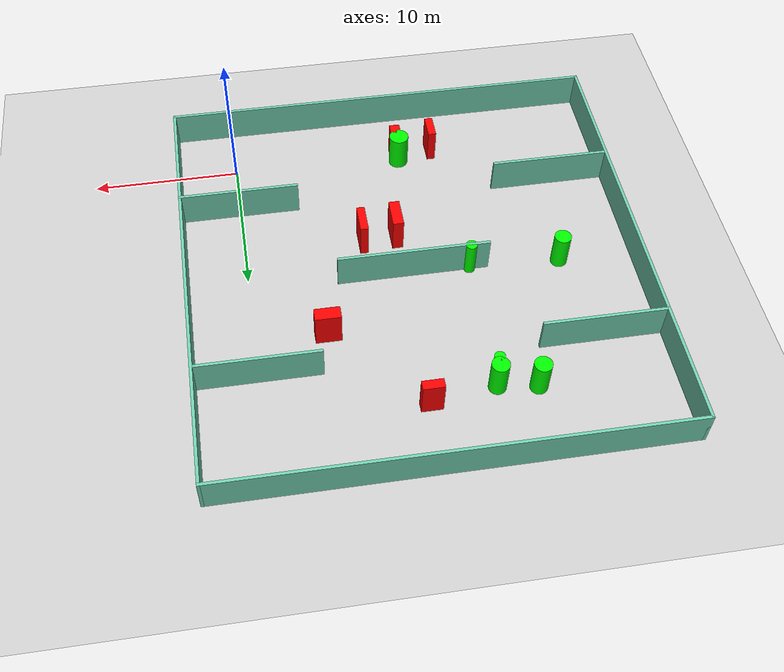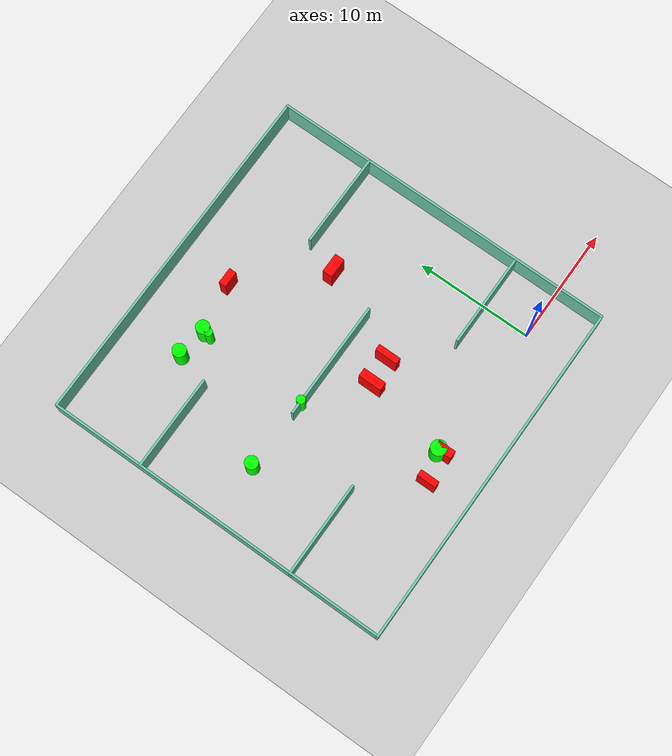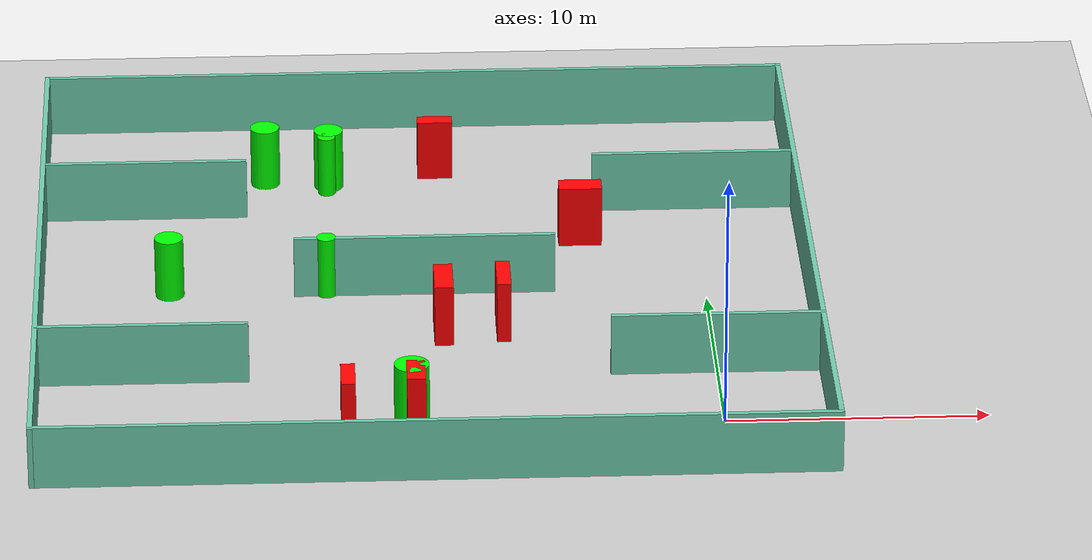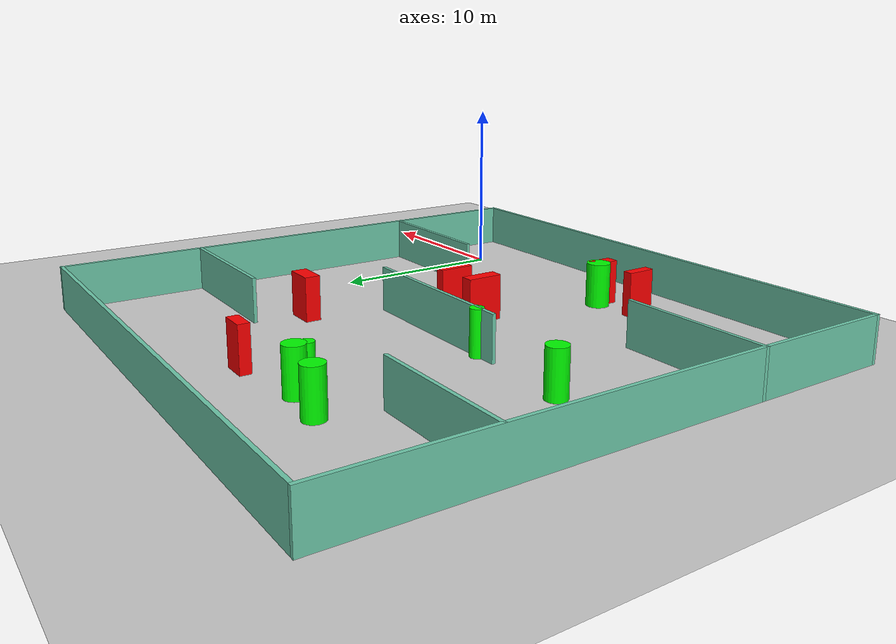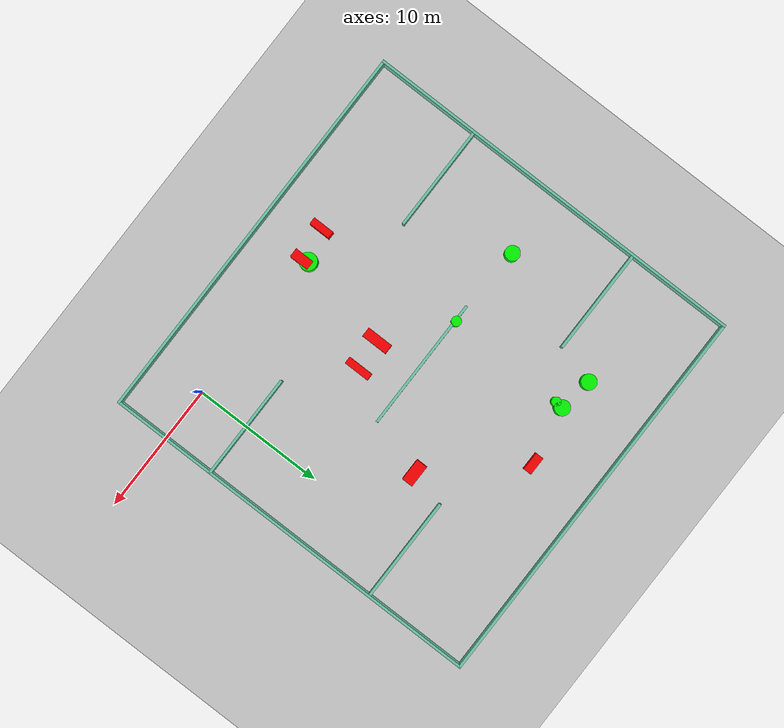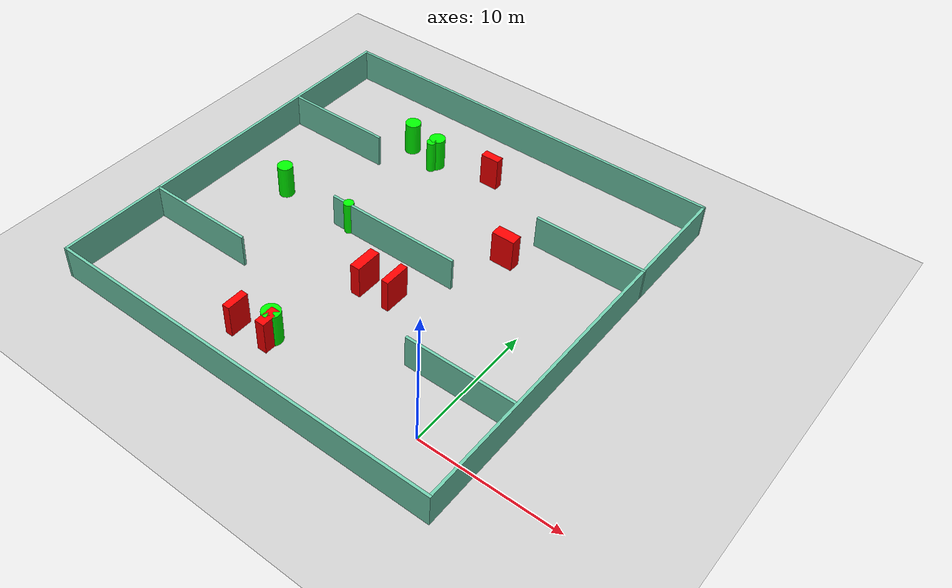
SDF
<sdf version="1.7">
 <world name="default">
  <light name="sun" type="directional">
   <pose>0 0 10 0 -0 0</pose>
   <diffuse>0.8 0.8 0.8 1</diffuse>
   <specular>0.2 0.2 0.2 1</specular>
   <attenuation>
    <range>1000</range>
    <constant>0.9</constant>
    <linear>0.01</linear>
    <quadratic>0.001</quadratic>
   </attenuation>
   <direction>-0.5 0.1 -0.9</direction>
   <spot><inner_angle>0</inner_angle><outer_angle>0</outer_angle><falloff>0</falloff></spot>
  </light>
  <model name="ground_plane">
   <static>1</static>
   <link name="link">
    <collision name="collision">
     <geometry><plane><normal>0 0 1</normal><size>100 100</size></plane></geometry>
     <surface>
      <contact><collide_bitmask>65535</collide_bitmask></contact>
      <friction><ode><mu>100</mu><mu2>50</mu2></ode></friction>
     </surface>
    </collision>
    <visual name="visual">
     <cast_shadows>0</cast_shadows>
     <geometry><plane><normal>0 0 1</normal><size>100 100</size></plane></geometry>
     <material>
      <script><uri>file://media/materials/scripts/gazebo.material</uri><name>Gazebo/Grey</name></script>
     </material>
    </visual>
   </link>
  </model>
  <gravity>0 0 -9.8</gravity>
  <magnetic_field>6e-06 2.3e-05 -4.2e-05</magnetic_field>
  <atmosphere type="adiabatic"/>
  <physics type="ode">
   <max_step_size>0.001</max_step_size>
   <real_time_factor>1</real_time_factor>
   <real_time_update_rate>1000</real_time_update_rate>
  </physics>
  <scene><ambient>0.4 0.4 0.4 1</ambient><background>0.7 0.7 0.7 1</background><shadows>1</shadows></scene>
  <spherical_coordinates>
   <surface_model>EARTH_WGS84</surface_model>
   <latitude_deg>0</latitude_deg>
   <longitude_deg>0</longitude_deg>
   <elevation>0</elevation>
   <heading_deg>0</heading_deg>
  </spherical_coordinates>
  <model name="my_base_walls">
   <link name="Wall_10">
    <collision name="Wall_10_Collision">
     <geometry><box><size>8.2 0.2 2.5</size></box></geometry>
     <pose>0 0 1.25 0 -0 0</pose>
    </collision>
    <visual name="Wall_10_Visual">
     <pose>0 0 1.25 0 -0 0</pose>
     <geometry><box><size>8.2 0.2 2.5</size></box></geometry>
     <material>
      <script><uri>file://media/materials/scripts/gazebo.material</uri><name>Gazebo/Grey</name></script>
      <ambient>0.435294 0.796078 0.67451 1</ambient>
     </material>
     <meta><layer>0</layer></meta>
    </visual>
    <pose>-11 -7 0 0 -0 0</pose>
   </link>
   <link name="Wall_12">
    <collision name="Wall_12_Collision">
     <geometry><box><size>8.2 0.2 2.5</size></box></geometry>
     <pose>0 0 1.25 0 -0 0</pose>
    </collision>
    <visual name="Wall_12_Visual">
     <pose>0 0 1.25 0 -0 0</pose>
     <geometry><box><size>8.2 0.2 2.5</size></box></geometry>
     <material>
      <script><uri>file://media/materials/scripts/gazebo.material</uri><name>Gazebo/Grey</name></script>
      <ambient>0.435294 0.796078 0.67451 1</ambient>
     </material>
     <meta><layer>0</layer></meta>
    </visual>
    <pose>-11 7 0 0 -0 0</pose>
   </link>
   <link name="Wall_14">
    <collision name="Wall_14_Collision">
     <geometry><box><size>8.2 0.2 2.5</size></box></geometry>
     <pose>0 0 1.25 0 -0 0</pose>
    </collision>
    <visual name="Wall_14_Visual">
     <pose>0 0 1.25 0 -0 0</pose>
     <geometry><box><size>8.2 0.2 2.5</size></box></geometry>
     <material>
      <script><uri>file://media/materials/scripts/gazebo.material</uri><name>Gazebo/Grey</name></script>
      <ambient>0.435294 0.796078 0.67451 1</ambient>
     </material>
     <meta><layer>0</layer></meta>
    </visual>
    <pose>11 7 0 0 -0 3.14159</pose>
   </link>
   <link name="Wall_16">
    <collision name="Wall_16_Collision">
     <geometry><box><size>10.2 0.2 2.5</size></box></geometry>
     <pose>0 0 1.25 0 -0 0</pose>
    </collision>
    <visual name="Wall_16_Visual">
     <pose>0 0 1.25 0 -0 0</pose>
     <geometry><box><size>10.2 0.2 2.5</size></box></geometry>
     <material>
      <script><uri>file://media/materials/scripts/gazebo.material</uri><name>Gazebo/Grey</name></script>
      <ambient>0.435294 0.796078 0.67451 1</ambient>
     </material>
     <meta><layer>0</layer></meta>
    </visual>
    <pose>0 0 0 0 -0 3.14159</pose>
   </link>
   <link name="Wall_2">
    <collision name="Wall_2_Collision">
     <geometry><box><size>30.2 0.2 2.5</size></box></geometry>
     <pose>0 0 1.25 0 -0 0</pose>
    </collision>
    <visual name="Wall_2_Visual">
     <pose>0 0 1.25 0 -0 0</pose>
     <geometry><box><size>30.2 0.2 2.5</size></box></geometry>
     <material>
      <script><uri>file://media/materials/scripts/gazebo.material</uri><name>Gazebo/Grey</name></script>
      <ambient>0.435294 0.796078 0.67451 1</ambient>
     </material>
     <meta><layer>0</layer></meta>
    </visual>
    <pose>0 -15 0 0 -0 3.14159</pose>
   </link>
   <link name="Wall_3">
    <collision name="Wall_3_Collision">
     <geometry><box><size>30.2 0.2 2.5</size></box></geometry>
     <pose>0 0 1.25 0 -0 0</pose>
    </collision>
    <visual name="Wall_3_Visual">
     <pose>0 0 1.25 0 -0 0</pose>
     <geometry><box><size>30.2 0.2 2.5</size></box></geometry>
     <material>
      <script><uri>file://media/materials/scripts/gazebo.material</uri><name>Gazebo/Grey</name></script>
      <ambient>0.435294 0.796078 0.67451 1</ambient>
     </material>
     <meta><layer>0</layer></meta>
    </visual>
    <pose>-15 0 0 0 -0 1.5708</pose>
   </link>
   <link name="Wall_4">
    <collision name="Wall_4_Collision">
     <geometry><box><size>30.2 0.2 2.5</size></box></geometry>
     <pose>0 0 1.25 0 -0 0</pose>
    </collision>
    <visual name="Wall_4_Visual">
     <pose>0 0 1.25 0 -0 0</pose>
     <geometry><box><size>30.2 0.2 2.5</size></box></geometry>
     <material>
      <script><uri>file://media/materials/scripts/gazebo.material</uri><name>Gazebo/Grey</name></script>
      <ambient>0.435294 0.796078 0.67451 1</ambient>
     </material>
     <meta><layer>0</layer></meta>
    </visual>
    <pose>0 15 0 0 -0 0</pose>
   </link>
   <link name="Wall_6">
    <collision name="Wall_6_Collision">
     <geometry><box><size>30.2 0.2 2.5</size></box></geometry>
     <pose>0 0 1.25 0 -0 0</pose>
    </collision>
    <visual name="Wall_6_Visual">
     <pose>0 0 1.25 0 -0 0</pose>
     <geometry><box><size>30.2 0.2 2.5</size></box></geometry>
     <material>
      <script><uri>file://media/materials/scripts/gazebo.material</uri><name>Gazebo/Grey</name></script>
      <ambient>0.435294 0.796078 0.67451 1</ambient>
     </material>
     <meta><layer>0</layer></meta>
    </visual>
    <pose>15 0 0 0 -0 1.5708</pose>
   </link>
   <link name="Wall_8">
    <collision name="Wall_8_Collision">
     <geometry><box><size>8.2 0.2 2.5</size></box></geometry>
     <pose>0 0 1.25 0 -0 0</pose>
    </collision>
    <visual name="Wall_8_Visual">
     <pose>0 0 1.25 0 -0 0</pose>
     <geometry><box><size>8.2 0.2 2.5</size></box></geometry>
     <material>
      <script><uri>file://media/materials/scripts/gazebo.material</uri><name>Gazebo/Grey</name></script>
      <ambient>0.435294 0.796078 0.67451 1</ambient>
     </material>
     <meta><layer>0</layer></meta>
    </visual>
    <pose>11 -7 0 0 -0 3.14159</pose>
   </link>
   <static>1</static>
   <pose>-11 11 0 0 -0 0</pose>
  </model>
  <model name="cylinder1">
   <static>1</static>
   <link name="link">
    <inertial>
     <mass>1</mass>
     <inertia><ixx>0.5</ixx><ixy>0</ixy><ixz>0</ixz><iyy>0.5</iyy><iyz>0</iyz><izz>1</izz></inertia>
    </inertial>
    <collision name="collision">
     <geometry><cylinder><radius>0.6658087719211567</radius><length>2.5</length></cylinder></geometry>
    </collision>
    <visual name="visual">
     <geometry><cylinder><radius>0.6658087719211567</radius><length>2.5</length></cylinder></geometry>
     <material>
      <ambient>0 1 0 1</ambient>
      <diffuse>0 1 0 1</diffuse>
      <specular>0.1 0.1 0.1 1</specular>
      <emissive>0 0 0 0</emissive>
     </material>
    </visual>
   </link>
   <pose>-11.795595522590927 0.3819663974478522 1.25 0 0 0</pose>
  </model>
  <model name="cylinder2">
   <static>1</static>
   <link name="link">
    <inertial>
     <mass>1</mass>
     <inertia><ixx>0.5</ixx><ixy>0</ixy><ixz>0</ixz><iyy>0.5</iyy><iyz>0</iyz><izz>1</izz></inertia>
    </inertial>
    <collision name="collision">
     <geometry><cylinder><radius>0.37403992156793553</radius><length>2.5</length></cylinder></geometry>
    </collision>
    <visual name="visual">
     <geometry><cylinder><radius>0.37403992156793553</radius><length>2.5</length></cylinder></geometry>
     <material>
      <ambient>0 1 0 1</ambient>
      <diffuse>0 1 0 1</diffuse>
      <specular>0.1 0.1 0.1 1</specular>
      <emissive>0 0 0 0</emissive>
     </material>
    </visual>
   </link>
   <pose>-14.830240107599277 11.077373867462637 1.25 0 0 0</pose>
  </model>
  <model name="cylinder3">
   <static>1</static>
   <link name="link">
    <inertial>
     <mass>1</mass>
     <inertia><ixx>0.5</ixx><ixy>0</ixy><ixz>0</ixz><iyy>0.5</iyy><iyz>0</iyz><izz>1</izz></inertia>
    </inertial>
    <collision name="collision">
     <geometry><cylinder><radius>0.561130433340922</radius><length>2.5</length></cylinder></geometry>
    </collision>
    <visual name="visual">
     <geometry><cylinder><radius>0.561130433340922</radius><length>2.5</length></cylinder></geometry>
     <material>
      <ambient>0 1 0 1</ambient>
      <diffuse>0 1 0 1</diffuse>
      <specular>0.1 0.1 0.1 1</specular>
      <emissive>0 0 0 0</emissive>
     </material>
    </visual>
   </link>
   <pose>-20.96264608188748 11.262737155190866 1.25 0 0 0</pose>
  </model>
  <model name="cylinder4">
   <static>1</static>
   <link name="link">
    <inertial>
     <mass>1</mass>
     <inertia><ixx>0.5</ixx><ixy>0</ixy><ixz>0</ixz><iyy>0.5</iyy><iyz>0</iyz><izz>1</izz></inertia>
    </inertial>
    <collision name="collision">
     <geometry><cylinder><radius>0.5813480896677834</radius><length>2.5</length></cylinder></geometry>
    </collision>
    <visual name="visual">
     <geometry><cylinder><radius>0.5813480896677834</radius><length>2.5</length></cylinder></geometry>
     <material>
      <ambient>0 1 0 1</ambient>
      <diffuse>0 1 0 1</diffuse>
      <specular>0.1 0.1 0.1 1</specular>
      <emissive>0 0 0 0</emissive>
     </material>
    </visual>
   </link>
   <pose>-14.592261237817368 20.599455811817034 1.25 0 0 0</pose>
  </model>
  <model name="cylinder5">
   <static>1</static>
   <link name="link">
    <inertial>
     <mass>1</mass>
     <inertia><ixx>0.5</ixx><ixy>0</ixy><ixz>0</ixz><iyy>0.5</iyy><iyz>0</iyz><izz>1</izz></inertia>
    </inertial>
    <collision name="collision">
     <geometry><cylinder><radius>0.3496294256538176</radius><length>2.5</length></cylinder></geometry>
    </collision>
    <visual name="visual">
     <geometry><cylinder><radius>0.3496294256538176</radius><length>2.5</length></cylinder></geometry>
     <material>
      <ambient>0 1 0 1</ambient>
      <diffuse>0 1 0 1</diffuse>
      <specular>0.1 0.1 0.1 1</specular>
      <emissive>0 0 0 0</emissive>
     </material>
    </visual>
   </link>
   <pose>-14.671593637849345 19.99931620516078 1.25 0 0 0</pose>
  </model>
  <model name="cylinder6">
   <static>1</static>
   <link name="link">
    <inertial>
     <mass>1</mass>
     <inertia><ixx>0.5</ixx><ixy>0</ixy><ixz>0</ixz><iyy>0.5</iyy><iyz>0</iyz><izz>1</izz></inertia>
    </inertial>
    <collision name="collision">
     <geometry><cylinder><radius>0.5799211569222743</radius><length>2.5</length></cylinder></geometry>
    </collision>
    <visual name="visual">
     <geometry><cylinder><radius>0.5799211569222743</radius><length>2.5</length></cylinder></geometry>
     <material>
      <ambient>0 1 0 1</ambient>
      <diffuse>0 1 0 1</diffuse>
      <specular>0.1 0.1 0.1 1</specular>
      <emissive>0 0 0 0</emissive>
     </material>
    </visual>
   </link>
   <pose>-17.14195556760742 20.960822278397007 1.25 0 0 0</pose>
  </model>
  <model name="box1">
   <static>1</static>
   <link name="link">
    <inertial>
     <mass>1</mass>
     <inertia><ixx>0.083</ixx><ixy>0</ixy><ixz>0</ixz><iyy>0.083</iyy><iyz>0</iyz><izz>0.083</izz></inertia>
    </inertial>
    <collision name="collision">
     <geometry><box><size>0.5481579583369403 1.6463287794154517 2.5</size></box></geometry>
    </collision>
    <visual name="visual">
     <geometry><box><size>0.5481579583369403 1.6463287794154517 2.5</size></box></geometry>
     <material>
      <ambient>1 0 0 1</ambient>
      <diffuse>1 0 0 1</diffuse>
      <specular>0.1 0.1 0.1 1</specular>
      <emissive>0 0 0 0</emissive>
     </material>
    </visual>
    <sensor name="my_contact" type="contact">
     <contact><collision>box_collision</collision><topic>__default_topic__</topic></contact>
    </sensor>
   </link>
   <pose>-14.19889624604399 -0.32010207957600034 1.25 0 0 0</pose>
  </model>
  <model name="box2">
   <static>1</static>
   <link name="link">
    <inertial>
     <mass>1</mass>
     <inertia><ixx>0.083</ixx><ixy>0</ixy><ixz>0</ixz><iyy>0.083</iyy><iyz>0</iyz><izz>0.083</izz></inertia>
    </inertial>
    <collision name="collision">
     <geometry><box><size>0.7307486724342913 2.014266298895833 2.5</size></box></geometry>
    </collision>
    <visual name="visual">
     <geometry><box><size>0.7307486724342913 2.014266298895833 2.5</size></box></geometry>
     <material>
      <ambient>1 0 0 1</ambient>
      <diffuse>1 0 0 1</diffuse>
      <specular>0.1 0.1 0.1 1</specular>
      <emissive>0 0 0 0</emissive>
     </material>
    </visual>
    <sensor name="my_contact" type="contact">
     <contact><collision>box_collision</collision><topic>__default_topic__</topic></contact>
    </sensor>
   </link>
   <pose>-10.374849538022998 7.5543694659601766 1.25 0 0 0</pose>
  </model>
  <model name="box3">
   <static>1</static>
   <link name="link">
    <inertial>
     <mass>1</mass>
     <inertia><ixx>0.083</ixx><ixy>0</ixy><ixz>0</ixz><iyy>0.083</iyy><iyz>0</iyz><izz>0.083</izz></inertia>
    </inertial>
    <collision name="collision">
     <geometry><box><size>0.5455064077790699 1.967163641385263 2.5</size></box></geometry>
    </collision>
    <visual name="visual">
     <geometry><box><size>0.5455064077790699 1.967163641385263 2.5</size></box></geometry>
     <material>
      <ambient>1 0 0 1</ambient>
      <diffuse>1 0 0 1</diffuse>
      <specular>0.1 0.1 0.1 1</specular>
      <emissive>0 0 0 0</emissive>
     </material>
    </visual>
    <sensor name="my_contact" type="contact">
     <contact><collision>box_collision</collision><topic>__default_topic__</topic></contact>
    </sensor>
   </link>
   <pose>-8.052836129391626 7.720886565230886 1.25 0 0 0</pose>
  </model>
  <model name="box4">
   <static>1</static>
   <link name="link">
    <inertial>
     <mass>1</mass>
     <inertia><ixx>0.083</ixx><ixy>0</ixy><ixz>0</ixz><iyy>0.083</iyy><iyz>0</iyz><izz>0.083</izz></inertia>
    </inertial>
    <collision name="collision">
     <geometry><box><size>0.7113228644859191 1.503932802890664 2.5</size></box></geometry>
    </collision>
    <visual name="visual">
     <geometry><box><size>0.7113228644859191 1.503932802890664 2.5</size></box></geometry>
     <material>
      <ambient>1 0 0 1</ambient>
      <diffuse>1 0 0 1</diffuse>
      <specular>0.1 0.1 0.1 1</specular>
      <emissive>0 0 0 0</emissive>
     </material>
    </visual>
    <sensor name="my_contact" type="contact">
     <contact><collision>box_collision</collision><topic>__default_topic__</topic></contact>
    </sensor>
   </link>
   <pose>-11.641108581767098 -0.06909491596584694 1.25 0 0 0</pose>
  </model>
  <model name="box5">
   <static>1</static>
   <link name="link">
    <inertial>
     <mass>1</mass>
     <inertia><ixx>0.083</ixx><ixy>0</ixy><ixz>0</ixz><iyy>0.083</iyy><iyz>0</iyz><izz>0.083</izz></inertia>
    </inertial>
    <collision name="collision">
     <geometry><box><size>1.7002052466706443 0.8595562219757418 2.5</size></box></geometry>
    </collision>
    <visual name="visual">
     <geometry><box><size>1.7002052466706443 0.8595562219757418 2.5</size></box></geometry>
     <material>
      <ambient>1 0 0 1</ambient>
      <diffuse>1 0 0 1</diffuse>
      <specular>0.1 0.1 0.1 1</specular>
      <emissive>0 0 0 0</emissive>
     </material>
    </visual>
    <sensor name="my_contact" type="contact">
     <contact><collision>box_collision</collision><topic>__default_topic__</topic></contact>
    </sensor>
   </link>
   <pose>-4.705426544982458 15.261440502120486 1.25 0 0 0</pose>
  </model>
  <model name="box6">
   <static>1</static>
   <link name="link">
    <inertial>
     <mass>1</mass>
     <inertia><ixx>0.083</ixx><ixy>0</ixy><ixz>0</ixz><iyy>0.083</iyy><iyz>0</iyz><izz>0.083</izz></inertia>
    </inertial>
    <collision name="collision">
     <geometry><box><size>1.40121768870954 0.6257188999622195 2.5</size></box></geometry>
    </collision>
    <visual name="visual">
     <geometry><box><size>1.40121768870954 0.6257188999622195 2.5</size></box></geometry>
     <material>
      <ambient>1 0 0 1</ambient>
      <diffuse>1 0 0 1</diffuse>
      <specular>0.1 0.1 0.1 1</specular>
      <emissive>0 0 0 0</emissive>
     </material>
    </visual>
    <sensor name="my_contact" type="contact">
     <contact><collision>box_collision</collision><topic>__default_topic__</topic></contact>
    </sensor>
   </link>
   <pose>-10.285506079847776 21.40065066548437 1.25 0 0 0</pose>
  </model>
 </world>
</sdf>
